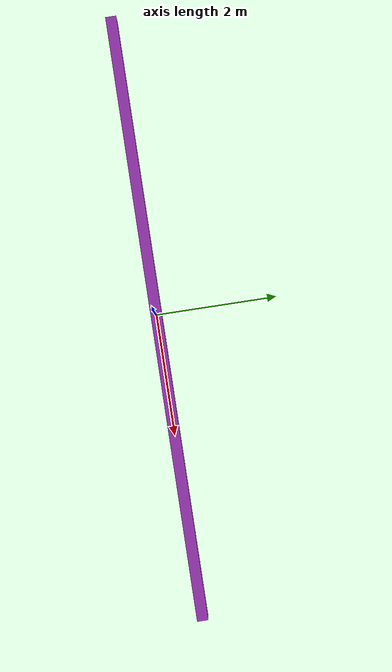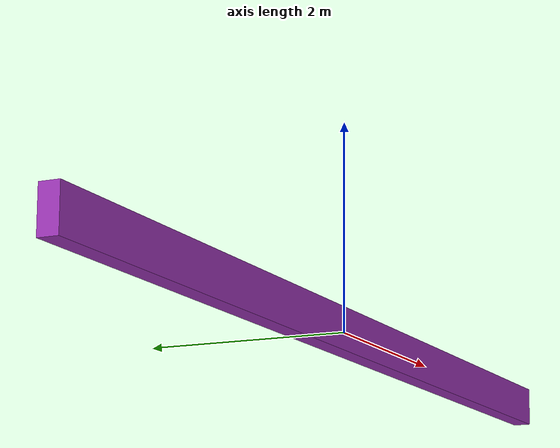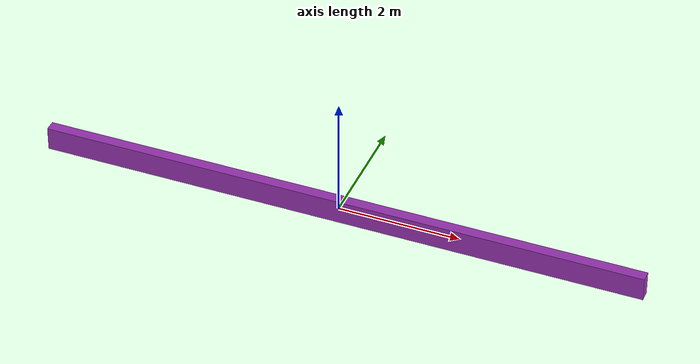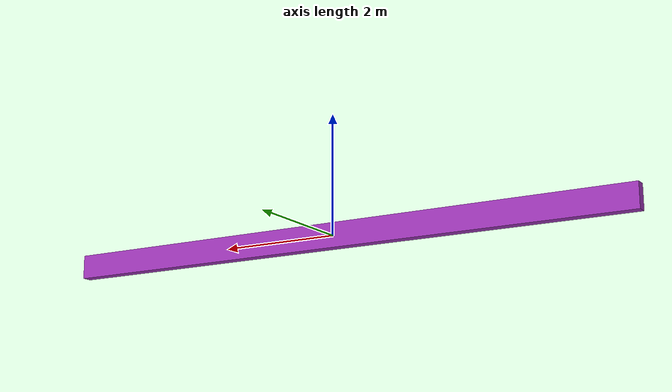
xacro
<?xml version="1.0"?>
<robot name="conveyor_belt" xmlns:xacro="http://www.ros.org/wiki/xacro">

    <xacro:property name="prefix" value="belt" />
    <xacro:property name="parent_link" value="world" />
    <xacro:property name="conveyor_size_x" value="10.0" />
    <xacro:property name="conveyor_size_y" value="0.18" />
    <xacro:property name="conveyor_size_z" value="0.4" />
    <xacro:property name="moving_gap_x" value="0.0" />
    <xacro:property name="moving_gap_y" value="0.0" />
    <xacro:property name="moving_gap_z" value="0.05" />

    <xacro:property name="PI" value="3.1415926535897931" />

    <xacro:macro name="conveyor_belt" params="prefix
                                              parent_link
                                              conveyor_size_x
                                              conveyor_size_y
                                              conveyor_size_z">

        <joint name="fixed" type="fixed">
            <parent link="${parent_link}"/>
            <child link="${prefix}_visual"/>
            <origin xyz="0.0 0.0 0.0"
                    rpy="0.0 0.0 0.0" />
        </joint>

        <link name="${prefix}_visual">
            <collision>
                <origin xyz="0.0 0.0 0.0" rpy="0 0 0"/>
                <geometry>
                    <box size="${conveyor_size_x} ${conveyor_size_y} ${conveyor_size_z}"/>
                </geometry>
            </collision>

            <visual>
                <origin xyz="0.0 0.0 0.0" rpy="0 0 0"/>
                <geometry>
                    <box size="${conveyor_size_x} ${conveyor_size_y} ${conveyor_size_z}"/>
                </geometry>
                <material name="purple" />
            </visual>

            <inertial>
                <origin xyz="0.0 0.0 0.0" rpy="0 0 0"/>
                <mass value="20"/>
                <inertia
                    ixx="1.0" ixy="0.0" ixz="0.0"
                    iyy="1.0" iyz="0.0"
                    izz="1.0"/>
            </inertial>
        </link>

        <link name="${prefix}_moving">
            <inertial>
                <origin xyz="0.0 0.0 0.0" rpy="0 0 0"/>
                <mass value="20"/>
                <inertia
                    ixx="1.0" ixy="0.0" ixz="0.0"
                    iyy="1.0" iyz="0.0"
                    izz="1.0"/>
            </inertial>

            <collision>
                <origin xyz="${moving_gap_x} ${moving_gap_y} ${moving_gap_z}" rpy="0 0 0"/>
                <geometry>
                    <box size="${conveyor_size_x} ${conveyor_size_y} ${conveyor_size_z}"/>
                </geometry>
            </collision>
        </link>

        <joint name="belt_joint" type="prismatic">
            <origin xyz="0.0 0.0 0.0" rpy="0 0 0"/>
            <parent link="${prefix}_visual"/>
            <child link="${prefix}_moving"/>
            <axis xyz="1 0 0"/>
            <limit lower="0.0" upper="1.0" effort="100" velocity="100"/>
        </joint>

        <gazebo>
            <plugin name="${prefix}_conveyor_plugin" filename="libROSConveyorBeltPlugin.so">
                <robot_namespace>/</robot_namespace>
                <link>${prefix}_moving</link>
                <power>0</power>
                <max_velocity>1.0</max_velocity>
            </plugin>
            <material>Gazebo/Purple</material>
        </gazebo>

    </xacro:macro>

    <link name="${parent_link}" />

    <xacro:conveyor_belt prefix="${prefix}"
                         parent_link="${parent_link}"
                         conveyor_size_x="${conveyor_size_x}"
                         conveyor_size_y="${conveyor_size_y}"
                         conveyor_size_z="${conveyor_size_z}" >
    </xacro:conveyor_belt>

</robot>
